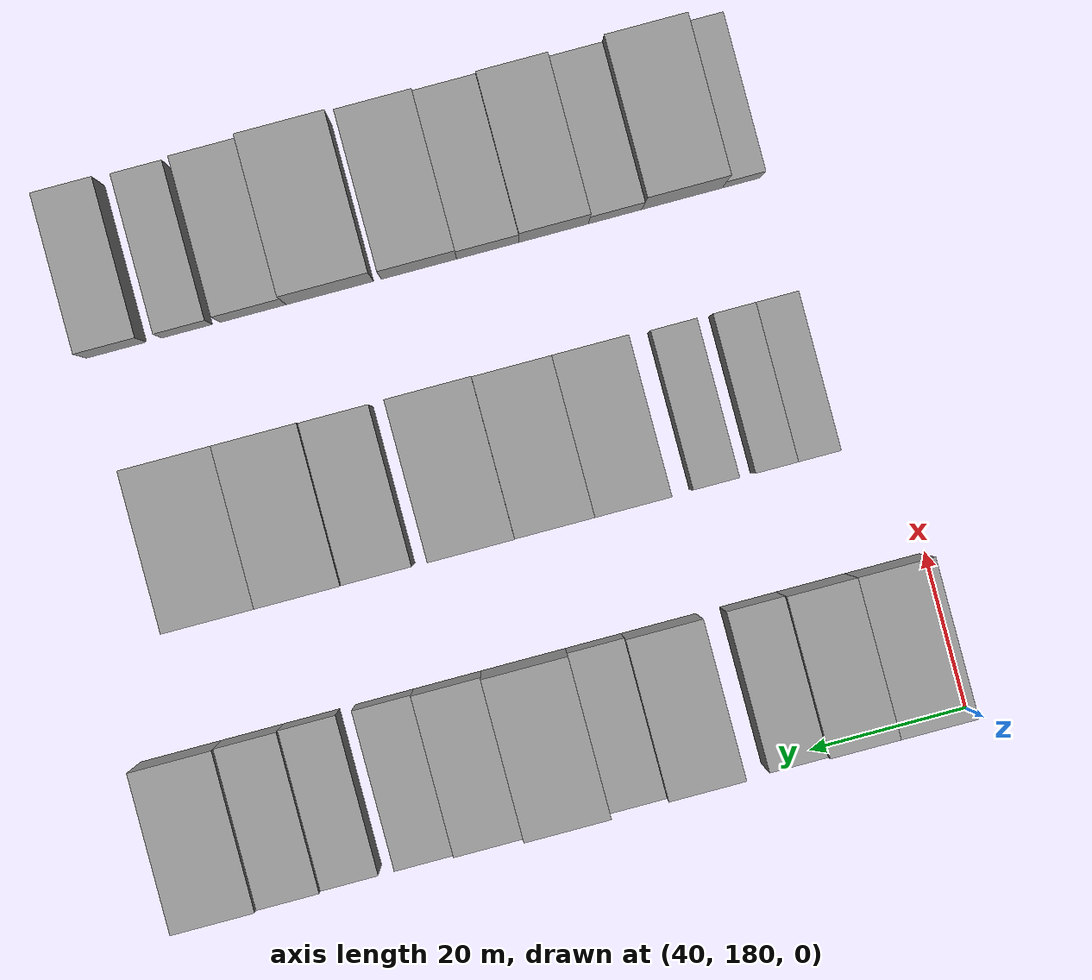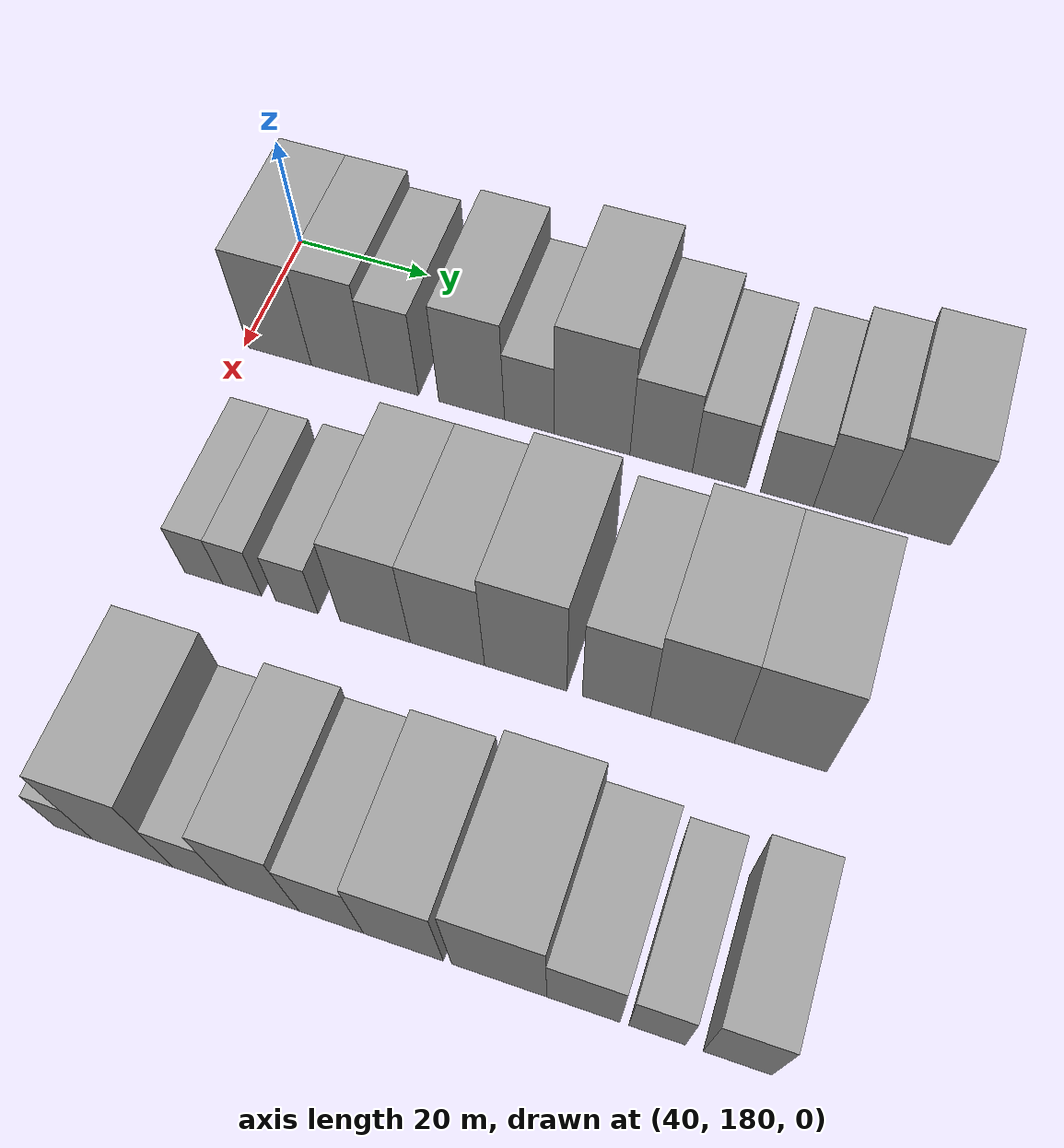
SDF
<sdf version="1.6">
 <world name="default">
  <model name="building_62">
   <static>1</static>
   <pose>50.0000 185.4609 0 0.000000 0.000000 0.000000</pose>
   <link name="link">
    <pose>0 0 10.50 0 0 0</pose>
    <collision name="collision"><geometry><box><size>20.0000 9.5754 21.0000</size></box></geometry></collision>
    <visual name="visual">
     <cast_shadows>0</cast_shadows>
     <geometry><box><size>20.0000 9.5754 21.0000</size></box></geometry>
     <material>
      <script>
       <uri>model://grey_wall/materials/scripts</uri>
       <uri>model://grey_wall/materials/textures</uri>
       <name>vrc/grey_wall</name>
      </script>
     </material>
    </visual>
   </link>
  </model>
  <model name="building_63">
   <static>1</static>
   <pose>50.0000 194.6372 0 0.000000 0.000000 0.000000</pose>
   <link name="link">
    <pose>0 0 10.50 0 0 0</pose>
    <collision name="collision"><geometry><box><size>20.0000 8.7773 21.0000</size></box></geometry></collision>
    <visual name="visual">
     <cast_shadows>0</cast_shadows>
     <geometry><box><size>20.0000 8.7773 21.0000</size></box></geometry>
     <material>
      <script>
       <uri>model://grey_wall/materials/scripts</uri>
       <uri>model://grey_wall/materials/textures</uri>
       <name>vrc/grey_wall</name>
      </script>
     </material>
    </visual>
   </link>
  </model>
  <model name="building_64">
   <static>1</static>
   <pose>50.0000 202.6644 0 0.000000 0.000000 0.000000</pose>
   <link name="link">
    <pose>0 0 9.00 0 0 0</pose>
    <collision name="collision"><geometry><box><size>20.0000 7.2770 18.0000</size></box></geometry></collision>
    <visual name="visual">
     <cast_shadows>0</cast_shadows>
     <geometry><box><size>20.0000 7.2770 18.0000</size></box></geometry>
     <material>
      <script>
       <uri>model://grey_wall/materials/scripts</uri>
       <uri>model://grey_wall/materials/textures</uri>
       <name>vrc/grey_wall</name>
      </script>
     </material>
    </visual>
   </link>
  </model>
  <model name="building_65">
   <static>1</static>
   <pose>50.0000 214.0967 0 0.000000 0.000000 0.000000</pose>
   <link name="link">
    <pose>0 0 10.50 0 0 0</pose>
    <collision name="collision"><geometry><box><size>20.0000 9.5875 21.0000</size></box></geometry></collision>
    <visual name="visual">
     <cast_shadows>0</cast_shadows>
     <geometry><box><size>20.0000 9.5875 21.0000</size></box></geometry>
     <material>
      <script>
       <uri>model://grey_wall/materials/scripts</uri>
       <uri>model://grey_wall/materials/textures</uri>
       <name>vrc/grey_wall</name>
      </script>
     </material>
    </visual>
   </link>
  </model>
  <model name="building_66">
   <static>1</static>
   <pose>50.0000 222.4682 0 0.000000 0.000000 0.000000</pose>
   <link name="link">
    <pose>0 0 7.50 0 0 0</pose>
    <collision name="collision"><geometry><box><size>20.0000 7.1555 15.0000</size></box></geometry></collision>
    <visual name="visual">
     <cast_shadows>0</cast_shadows>
     <geometry><box><size>20.0000 7.1555 15.0000</size></box></geometry>
     <material>
      <script>
       <uri>model://grey_wall/materials/scripts</uri>
       <uri>model://grey_wall/materials/textures</uri>
       <name>vrc/grey_wall</name>
      </script>
     </material>
    </visual>
   </link>
  </model>
  <model name="building_67">
   <static>1</static>
   <pose>50.0000 231.4179 0 0.000000 0.000000 0.000000</pose>
   <link name="link">
    <pose>0 0 12.00 0 0 0</pose>
    <collision name="collision"><geometry><box><size>20.0000 10.7441 24.0000</size></box></geometry></collision>
    <visual name="visual">
     <cast_shadows>0</cast_shadows>
     <geometry><box><size>20.0000 10.7441 24.0000</size></box></geometry>
     <material>
      <script>
       <uri>model://grey_wall/materials/scripts</uri>
       <uri>model://grey_wall/materials/textures</uri>
       <name>vrc/grey_wall</name>
      </script>
     </material>
    </visual>
   </link>
  </model>
  <model name="building_68">
   <static>1</static>
   <pose>50.0000 241.1411 0 0.000000 0.000000 0.000000</pose>
   <link name="link">
    <pose>0 0 9.00 0 0 0</pose>
    <collision name="collision"><geometry><box><size>20.0000 8.7023 18.0000</size></box></geometry></collision>
    <visual name="visual">
     <cast_shadows>0</cast_shadows>
     <geometry><box><size>20.0000 8.7023 18.0000</size></box></geometry>
     <material>
      <script>
       <uri>model://grey_wall/materials/scripts</uri>
       <uri>model://grey_wall/materials/textures</uri>
       <name>vrc/grey_wall</name>
      </script>
     </material>
    </visual>
   </link>
  </model>
  <model name="building_69">
   <static>1</static>
   <pose>50.0000 249.2045 0 0.000000 0.000000 0.000000</pose>
   <link name="link">
    <pose>0 0 7.50 0 0 0</pose>
    <collision name="collision"><geometry><box><size>20.0000 7.4245 15.0000</size></box></geometry></collision>
    <visual name="visual">
     <cast_shadows>0</cast_shadows>
     <geometry><box><size>20.0000 7.4245 15.0000</size></box></geometry>
     <material>
      <script>
       <uri>model://grey_wall/materials/scripts</uri>
       <uri>model://grey_wall/materials/textures</uri>
       <name>vrc/grey_wall</name>
      </script>
     </material>
    </visual>
   </link>
  </model>
  <model name="building_70">
   <static>1</static>
   <pose>50.0000 258.5269 0 0.000000 0.000000 0.000000</pose>
   <link name="link">
    <pose>0 0 7.50 0 0 0</pose>
    <collision name="collision"><geometry><box><size>20.0000 7.2203 15.0000</size></box></geometry></collision>
    <visual name="visual">
     <cast_shadows>0</cast_shadows>
     <geometry><box><size>20.0000 7.2203 15.0000</size></box></geometry>
     <material>
      <script>
       <uri>model://grey_wall/materials/scripts</uri>
       <uri>model://grey_wall/materials/textures</uri>
       <name>vrc/grey_wall</name>
      </script>
     </material>
    </visual>
   </link>
  </model>
  <model name="building_71">
   <static>1</static>
   <pose>50.0000 266.0517 0 0.000000 0.000000 0.000000</pose>
   <link name="link">
    <pose>0 0 9.00 0 0 0</pose>
    <collision name="collision"><geometry><box><size>20.0000 7.8293 18.0000</size></box></geometry></collision>
    <visual name="visual">
     <cast_shadows>0</cast_shadows>
     <geometry><box><size>20.0000 7.8293 18.0000</size></box></geometry>
     <material>
      <script>
       <uri>model://grey_wall/materials/scripts</uri>
       <uri>model://grey_wall/materials/textures</uri>
       <name>vrc/grey_wall</name>
      </script>
     </material>
    </visual>
   </link>
  </model>
  <model name="building_72">
   <static>1</static>
   <pose>50.0000 275.1888 0 0.000000 0.000000 0.000000</pose>
   <link name="link">
    <pose>0 0 10.50 0 0 0</pose>
    <collision name="collision"><geometry><box><size>20.0000 10.4450 21.0000</size></box></geometry></collision>
    <visual name="visual">
     <cast_shadows>0</cast_shadows>
     <geometry><box><size>20.0000 10.4450 21.0000</size></box></geometry>
     <material>
      <script>
       <uri>model://grey_wall/materials/scripts</uri>
       <uri>model://grey_wall/materials/textures</uri>
       <name>vrc/grey_wall</name>
      </script>
     </material>
    </visual>
   </link>
  </model>
  <model name="building_142">
   <static>1</static>
   <pose>85.0000 190.2587 0 0.000000 0.000000 0.000000</pose>
   <link name="link">
    <pose>0 0 6.00 0 0 0</pose>
    <collision name="collision"><geometry><box><size>20.0000 5.3548 12.0000</size></box></geometry></collision>
    <visual name="visual">
     <cast_shadows>0</cast_shadows>
     <geometry><box><size>20.0000 5.3548 12.0000</size></box></geometry>
     <material>
      <script>
       <uri>model://grey_wall/materials/scripts</uri>
       <uri>model://grey_wall/materials/textures</uri>
       <name>vrc/grey_wall</name>
      </script>
     </material>
    </visual>
   </link>
  </model>
  <model name="building_143">
   <static>1</static>
   <pose>85.0000 195.6254 0 0.000000 0.000000 0.000000</pose>
   <link name="link">
    <pose>0 0 6.00 0 0 0</pose>
    <collision name="collision"><geometry><box><size>20.0000 5.3787 12.0000</size></box></geometry></collision>
    <visual name="visual">
     <cast_shadows>0</cast_shadows>
     <geometry><box><size>20.0000 5.3787 12.0000</size></box></geometry>
     <material>
      <script>
       <uri>model://grey_wall/materials/scripts</uri>
       <uri>model://grey_wall/materials/textures</uri>
       <name>vrc/grey_wall</name>
      </script>
     </material>
    </visual>
   </link>
  </model>
  <model name="building_144">
   <static>1</static>
   <pose>85.0000 203.2284 0 0.000000 0.000000 0.000000</pose>
   <link name="link">
    <pose>0 0 6.00 0 0 0</pose>
    <collision name="collision"><geometry><box><size>20.0000 5.8274 12.0000</size></box></geometry></collision>
    <visual name="visual">
     <cast_shadows>0</cast_shadows>
     <geometry><box><size>20.0000 5.8274 12.0000</size></box></geometry>
     <material>
      <script>
       <uri>model://grey_wall/materials/scripts</uri>
       <uri>model://grey_wall/materials/textures</uri>
       <name>vrc/grey_wall</name>
      </script>
     </material>
    </visual>
   </link>
  </model>
  <model name="building_145">
   <static>1</static>
   <pose>85.0000 213.8984 0 0.000000 0.000000 0.000000</pose>
   <link name="link">
    <pose>0 0 10.50 0 0 0</pose>
    <collision name="collision"><geometry><box><size>20.0000 9.5124 21.0000</size></box></geometry></collision>
    <visual name="visual">
     <cast_shadows>0</cast_shadows>
     <geometry><box><size>20.0000 9.5124 21.0000</size></box></geometry>
     <material>
      <script>
       <uri>model://grey_wall/materials/scripts</uri>
       <uri>model://grey_wall/materials/textures</uri>
       <name>vrc/grey_wall</name>
      </script>
     </material>
    </visual>
   </link>
  </model>
  <model name="building_146">
   <static>1</static>
   <pose>85.0000 223.6034 0 0.000000 0.000000 0.000000</pose>
   <link name="link">
    <pose>0 0 10.50 0 0 0</pose>
    <collision name="collision"><geometry><box><size>20.0000 9.8976 21.0000</size></box></geometry></collision>
    <visual name="visual">
     <cast_shadows>0</cast_shadows>
     <geometry><box><size>20.0000 9.8976 21.0000</size></box></geometry>
     <material>
      <script>
       <uri>model://grey_wall/materials/scripts</uri>
       <uri>model://grey_wall/materials/textures</uri>
       <name>vrc/grey_wall</name>
      </script>
     </material>
    </visual>
   </link>
  </model>
  <model name="building_147">
   <static>1</static>
   <pose>85.0000 233.9112 0 0.000000 0.000000 0.000000</pose>
   <link name="link">
    <pose>0 0 12.00 0 0 0</pose>
    <collision name="collision"><geometry><box><size>20.0000 10.7180 24.0000</size></box></geometry></collision>
    <visual name="visual">
     <cast_shadows>0</cast_shadows>
     <geometry><box><size>20.0000 10.7180 24.0000</size></box></geometry>
     <material>
      <script>
       <uri>model://grey_wall/materials/scripts</uri>
       <uri>model://grey_wall/materials/textures</uri>
       <name>vrc/grey_wall</name>
      </script>
     </material>
    </visual>
   </link>
  </model>
  <model name="building_148">
   <static>1</static>
   <pose>85.0000 245.6224 0 0.000000 0.000000 0.000000</pose>
   <link name="link">
    <pose>0 0 10.50 0 0 0</pose>
    <collision name="collision"><geometry><box><size>20.0000 8.7045 21.0000</size></box></geometry></collision>
    <visual name="visual">
     <cast_shadows>0</cast_shadows>
     <geometry><box><size>20.0000 8.7045 21.0000</size></box></geometry>
     <material>
      <script>
       <uri>model://grey_wall/materials/scripts</uri>
       <uri>model://grey_wall/materials/textures</uri>
       <name>vrc/grey_wall</name>
      </script>
     </material>
    </visual>
   </link>
  </model>
  <model name="building_149">
   <static>1</static>
   <pose>85.0000 255.2530 0 0.000000 0.000000 0.000000</pose>
   <link name="link">
    <pose>0 0 12.00 0 0 0</pose>
    <collision name="collision"><geometry><box><size>20.0000 10.5565 24.0000</size></box></geometry></collision>
    <visual name="visual">
     <cast_shadows>0</cast_shadows>
     <geometry><box><size>20.0000 10.5565 24.0000</size></box></geometry>
     <material>
      <script>
       <uri>model://grey_wall/materials/scripts</uri>
       <uri>model://grey_wall/materials/textures</uri>
       <name>vrc/grey_wall</name>
      </script>
     </material>
    </visual>
   </link>
  </model>
  <model name="building_150">
   <static>1</static>
   <pose>85.0000 266.2537 0 0.000000 0.000000 0.000000</pose>
   <link name="link">
    <pose>0 0 12.00 0 0 0</pose>
    <collision name="collision"><geometry><box><size>20.0000 11.4449 24.0000</size></box></geometry></collision>
    <visual name="visual">
     <cast_shadows>0</cast_shadows>
     <geometry><box><size>20.0000 11.4449 24.0000</size></box></geometry>
     <material>
      <script>
       <uri>model://grey_wall/materials/scripts</uri>
       <uri>model://grey_wall/materials/textures</uri>
       <name>vrc/grey_wall</name>
      </script>
     </material>
    </visual>
   </link>
  </model>
  <model name="building_222">
   <static>1</static>
   <pose>120.0000 190.1244 0 0.000000 0.000000 0.000000</pose>
   <link name="link">
    <pose>0 0 6.00 0 0 0</pose>
    <collision name="collision"><geometry><box><size>20.0000 4.9140 12.0000</size></box></geometry></collision>
    <visual name="visual">
     <cast_shadows>0</cast_shadows>
     <geometry><box><size>20.0000 4.9140 12.0000</size></box></geometry>
     <material>
      <script>
       <uri>model://grey_wall/materials/scripts</uri>
       <uri>model://grey_wall/materials/textures</uri>
       <name>vrc/grey_wall</name>
      </script>
     </material>
    </visual>
   </link>
  </model>
  <model name="building_223">
   <static>1</static>
   <pose>120.0000 197.7302 0 0.000000 0.000000 0.000000</pose>
   <link name="link">
    <pose>0 0 12.00 0 0 0</pose>
    <collision name="collision"><geometry><box><size>20.0000 10.2977 24.0000</size></box></geometry></collision>
    <visual name="visual">
     <cast_shadows>0</cast_shadows>
     <geometry><box><size>20.0000 10.2977 24.0000</size></box></geometry>
     <material>
      <script>
       <uri>model://grey_wall/materials/scripts</uri>
       <uri>model://grey_wall/materials/textures</uri>
       <name>vrc/grey_wall</name>
      </script>
     </material>
    </visual>
   </link>
  </model>
  <model name="building_224">
   <static>1</static>
   <pose>120.0000 206.3119 0 0.000000 0.000000 0.000000</pose>
   <link name="link">
    <pose>0 0 7.50 0 0 0</pose>
    <collision name="collision"><geometry><box><size>20.0000 6.8656 15.0000</size></box></geometry></collision>
    <visual name="visual">
     <cast_shadows>0</cast_shadows>
     <geometry><box><size>20.0000 6.8656 15.0000</size></box></geometry>
     <material>
      <script>
       <uri>model://grey_wall/materials/scripts</uri>
       <uri>model://grey_wall/materials/textures</uri>
       <name>vrc/grey_wall</name>
      </script>
     </material>
    </visual>
   </link>
  </model>
  <model name="building_225">
   <static>1</static>
   <pose>120.0000 214.2057 0 0.000000 0.000000 0.000000</pose>
   <link name="link">
    <pose>0 0 10.50 0 0 0</pose>
    <collision name="collision"><geometry><box><size>20.0000 8.9221 21.0000</size></box></geometry></collision>
    <visual name="visual">
     <cast_shadows>0</cast_shadows>
     <geometry><box><size>20.0000 8.9221 21.0000</size></box></geometry>
     <material>
      <script>
       <uri>model://grey_wall/materials/scripts</uri>
       <uri>model://grey_wall/materials/textures</uri>
       <name>vrc/grey_wall</name>
      </script>
     </material>
    </visual>
   </link>
  </model>
  <model name="building_226">
   <static>1</static>
   <pose>120.0000 222.6229 0 0.000000 0.000000 0.000000</pose>
   <link name="link">
    <pose>0 0 9.00 0 0 0</pose>
    <collision name="collision"><geometry><box><size>20.0000 7.9123 18.0000</size></box></geometry></collision>
    <visual name="visual">
     <cast_shadows>0</cast_shadows>
     <geometry><box><size>20.0000 7.9123 18.0000</size></box></geometry>
     <material>
      <script>
       <uri>model://grey_wall/materials/scripts</uri>
       <uri>model://grey_wall/materials/textures</uri>
       <name>vrc/grey_wall</name>
      </script>
     </material>
    </visual>
   </link>
  </model>
  <model name="building_227">
   <static>1</static>
   <pose>120.0000 231.3872 0 0.000000 0.000000 0.000000</pose>
   <link name="link">
    <pose>0 0 10.50 0 0 0</pose>
    <collision name="collision"><geometry><box><size>20.0000 9.6162 21.0000</size></box></geometry></collision>
    <visual name="visual">
     <cast_shadows>0</cast_shadows>
     <geometry><box><size>20.0000 9.6162 21.0000</size></box></geometry>
     <material>
      <script>
       <uri>model://grey_wall/materials/scripts</uri>
       <uri>model://grey_wall/materials/textures</uri>
       <name>vrc/grey_wall</name>
      </script>
     </material>
    </visual>
   </link>
  </model>
  <model name="building_228">
   <static>1</static>
   <pose>120.0000 242.7787 0 0.000000 0.000000 0.000000</pose>
   <link name="link">
    <pose>0 0 12.00 0 0 0</pose>
    <collision name="collision"><geometry><box><size>20.0000 11.1669 24.0000</size></box></geometry></collision>
    <visual name="visual">
     <cast_shadows>0</cast_shadows>
     <geometry><box><size>20.0000 11.1669 24.0000</size></box></geometry>
     <material>
      <script>
       <uri>model://grey_wall/materials/scripts</uri>
       <uri>model://grey_wall/materials/textures</uri>
       <name>vrc/grey_wall</name>
      </script>
     </material>
    </visual>
   </link>
  </model>
  <model name="building_229">
   <static>1</static>
   <pose>120.0000 252.6024 0 0.000000 0.000000 0.000000</pose>
   <link name="link">
    <pose>0 0 9.00 0 0 0</pose>
    <collision name="collision"><geometry><box><size>20.0000 8.4804 18.0000</size></box></geometry></collision>
    <visual name="visual">
     <cast_shadows>0</cast_shadows>
     <geometry><box><size>20.0000 8.4804 18.0000</size></box></geometry>
     <material>
      <script>
       <uri>model://grey_wall/materials/scripts</uri>
       <uri>model://grey_wall/materials/textures</uri>
       <name>vrc/grey_wall</name>
      </script>
     </material>
    </visual>
   </link>
  </model>
  <model name="building_230">
   <static>1</static>
   <pose>120.0000 261.0663 0 0.000000 0.000000 0.000000</pose>
   <link name="link">
    <pose>0 0 7.50 0 0 0</pose>
    <collision name="collision"><geometry><box><size>20.0000 6.4475 15.0000</size></box></geometry></collision>
    <visual name="visual">
     <cast_shadows>0</cast_shadows>
     <geometry><box><size>20.0000 6.4475 15.0000</size></box></geometry>
     <material>
      <script>
       <uri>model://grey_wall/materials/scripts</uri>
       <uri>model://grey_wall/materials/textures</uri>
       <name>vrc/grey_wall</name>
      </script>
     </material>
    </visual>
   </link>
  </model>
  <model name="building_231">
   <static>1</static>
   <pose>120.0000 270.1306 0 0.000000 0.000000 0.000000</pose>
   <link name="link">
    <pose>0 0 9.00 0 0 0</pose>
    <collision name="collision"><geometry><box><size>20.0000 7.6810 18.0000</size></box></geometry></collision>
    <visual name="visual">
     <cast_shadows>0</cast_shadows>
     <geometry><box><size>20.0000 7.6810 18.0000</size></box></geometry>
     <material>
      <script>
       <uri>model://grey_wall/materials/scripts</uri>
       <uri>model://grey_wall/materials/textures</uri>
       <name>vrc/grey_wall</name>
      </script>
     </material>
    </visual>
   </link>
  </model>
 </world>
</sdf>
